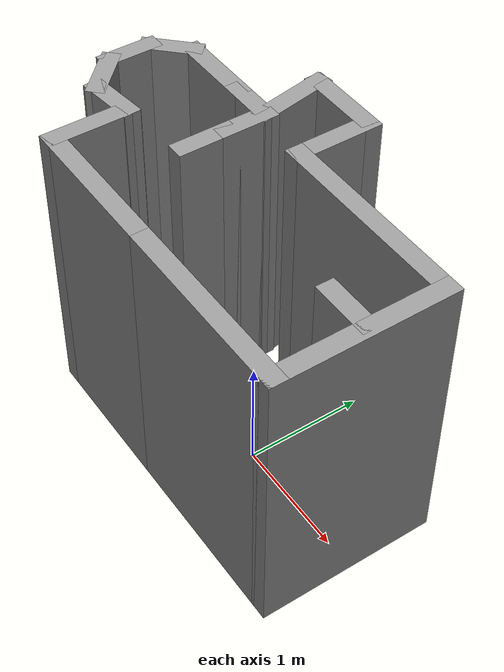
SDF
<?xml version='1.0'?>
<sdf version='1.7'>
  <model name='sample_world'>
    <pose>-0.477216 0.287847 0 0 -0 0</pose>
    <link name='Wall_148'>
      <collision name='Wall_148_Collision'>
        <geometry>
          <box>
            <size>0.4885 0.15 2.5</size>
          </box>
        </geometry>
        <pose>0 0 1.25 0 -0 0</pose>
      </collision>
      <visual name='Wall_148_Visual'>
        <pose>0 0 1.25 0 -0 0</pose>
        <geometry>
          <box>
            <size>0.4885 0.15 2.5</size>
          </box>
        </geometry>
        <material>
          <script>
            <uri>file://media/materials/scripts/gazebo.material</uri>
            <name>Gazebo/Grey</name>
          </script>
          <ambient>1 1 1 1</ambient>
        </material>
        <meta>
          <layer>0</layer>
        </meta>
      </visual>
      <pose>-0.435723 0.252866 0 0 -0 1.5708</pose>
    </link>
    <link name='Wall_149'>
      <collision name='Wall_149_Collision'>
        <geometry>
          <box>
            <size>0.5 0.15 2.5</size>
          </box>
        </geometry>
        <pose>0 0 1.25 0 -0 0</pose>
      </collision>
      <visual name='Wall_149_Visual'>
        <pose>0 0 1.25 0 -0 0</pose>
        <geometry>
          <box>
            <size>0.5 0.15 2.5</size>
          </box>
        </geometry>
        <material>
          <script>
            <uri>file://media/materials/scripts/gazebo.material</uri>
            <name>Gazebo/Grey</name>
          </script>
          <ambient>1 1 1 1</ambient>
        </material>
        <meta>
          <layer>0</layer>
        </meta>
      </visual>
      <pose>-0.610723 0.422116 0 0 -0 3.14159</pose>
    </link>
    <link name='Wall_151'>
      <collision name='Wall_151_Collision'>
        <geometry>
          <box>
            <size>0.5115 0.15 2.5</size>
          </box>
        </geometry>
        <pose>0 0 1.25 0 -0 0</pose>
      </collision>
      <visual name='Wall_151_Visual'>
        <pose>0 0 1.25 0 -0 0</pose>
        <geometry>
          <box>
            <size>0.5115 0.15 2.5</size>
          </box>
        </geometry>
        <material>
          <script>
            <uri>file://media/materials/scripts/gazebo.material</uri>
            <name>Gazebo/Grey</name>
          </script>
          <ambient>1 1 1 1</ambient>
        </material>
        <meta>
          <layer>0</layer>
        </meta>
      </visual>
      <pose>-0.435723 -0.097134 0 0 -0 -1.5708</pose>
    </link>
    <link name='Wall_154'>
      <collision name='Wall_154_Collision'>
        <geometry>
          <box>
            <size>1.25 0.15 2.5</size>
          </box>
        </geometry>
        <pose>0 0 1.25 0 -0 0</pose>
      </collision>
      <visual name='Wall_154_Visual'>
        <pose>0 0 1.25 0 -0 0</pose>
        <geometry>
          <box>
            <size>1.25 0.15 2.5</size>
          </box>
        </geometry>
        <material>
          <script>
            <uri>file://media/materials/scripts/gazebo.material</uri>
            <name>Gazebo/Grey</name>
          </script>
          <ambient>1 1 1 1</ambient>
        </material>
        <meta>
          <layer>0</layer>
        </meta>
      </visual>
      <pose>-0.485723 -0.981135 0 0 -0 3.14159</pose>
    </link>
    <link name='Wall_155'>
      <collision name='Wall_155_Collision'>
        <geometry>
          <box>
            <size>0.75 0.15 2.5</size>
          </box>
        </geometry>
        <pose>0 0 1.25 0 -0 0</pose>
      </collision>
      <visual name='Wall_155_Visual'>
        <pose>0 0 1.25 0 -0 0</pose>
        <geometry>
          <box>
            <size>0.75 0.15 2.5</size>
          </box>
        </geometry>
        <material>
          <script>
            <uri>file://media/materials/scripts/gazebo.material</uri>
            <name>Gazebo/Grey</name>
          </script>
          <ambient>1 1 1 1</ambient>
        </material>
        <meta>
          <layer>0</layer>
        </meta>
      </visual>
      <pose>-1.03572 -0.681135 0 0 -0 1.5708</pose>
    </link>
    <link name='Wall_158'>
      <collision name='Wall_158_Collision'>
        <geometry>
          <box>
            <size>0.75 0.15 2.5</size>
          </box>
        </geometry>
        <pose>0 0 1.25 0 -0 0</pose>
      </collision>
      <visual name='Wall_158_Visual'>
        <pose>0 0 1.25 0 -0 0</pose>
        <geometry>
          <box>
            <size>0.75 0.15 2.5</size>
          </box>
        </geometry>
        <material>
          <script>
            <uri>file://media/materials/scripts/gazebo.material</uri>
            <name>Gazebo/Grey</name>
          </script>
          <ambient>1 1 1 1</ambient>
        </material>
        <meta>
          <layer>0</layer>
        </meta>
      </visual>
      <pose>-1.08572 0.422116 0 0 -0 3.14159</pose>
    </link>
    <link name='Wall_159'>
      <collision name='Wall_159_Collision'>
        <geometry>
          <box>
            <size>0.5 0.15 2.5</size>
          </box>
        </geometry>
        <pose>0 0 1.25 0 -0 0</pose>
      </collision>
      <visual name='Wall_159_Visual'>
        <pose>0 0 1.25 0 -0 0</pose>
        <geometry>
          <box>
            <size>0.5 0.15 2.5</size>
          </box>
        </geometry>
        <material>
          <script>
            <uri>file://media/materials/scripts/gazebo.material</uri>
            <name>Gazebo/Grey</name>
          </script>
          <ambient>1 1 1 1</ambient>
        </material>
        <meta>
          <layer>0</layer>
        </meta>
      </visual>
      <pose>-1.50947 0.298372 0 0 -0 -2.35619</pose>
    </link>
    <link name='Wall_160'>
      <collision name='Wall_160_Collision'>
        <geometry>
          <box>
            <size>0.5 0.15 2.5</size>
          </box>
        </geometry>
        <pose>0 0 1.25 0 -0 0</pose>
      </collision>
      <visual name='Wall_160_Visual'>
        <pose>0 0 1.25 0 -0 0</pose>
        <geometry>
          <box>
            <size>0.5 0.15 2.5</size>
          </box>
        </geometry>
        <material>
          <script>
            <uri>file://media/materials/scripts/gazebo.material</uri>
            <name>Gazebo/Grey</name>
          </script>
          <ambient>1 1 1 1</ambient>
        </material>
        <meta>
          <layer>0</layer>
        </meta>
      </visual>
      <pose>-1.63321 -0.000372 0 0 -0 -1.5708</pose>
    </link>
    <link name='Wall_161'>
      <collision name='Wall_161_Collision'>
        <geometry>
          <box>
            <size>0.5 0.15 2.5</size>
          </box>
        </geometry>
        <pose>0 0 1.25 0 -0 0</pose>
      </collision>
      <visual name='Wall_161_Visual'>
        <pose>0 0 1.25 0 -0 0</pose>
        <geometry>
          <box>
            <size>0.5 0.15 2.5</size>
          </box>
        </geometry>
        <material>
          <script>
            <uri>file://media/materials/scripts/gazebo.material</uri>
            <name>Gazebo/Grey</name>
          </script>
          <ambient>1 1 1 1</ambient>
        </material>
        <meta>
          <layer>0</layer>
        </meta>
      </visual>
      <pose>-1.50947 -0.299115 0 0 -0 -0.785398</pose>
    </link>
    <link name='Wall_162'>
      <collision name='Wall_162_Collision'>
        <geometry>
          <box>
            <size>0.502478 0.15 2.5</size>
          </box>
        </geometry>
        <pose>0 0 1.25 0 -0 0</pose>
      </collision>
      <visual name='Wall_162_Visual'>
        <pose>0 0 1.25 0 -0 0</pose>
        <geometry>
          <box>
            <size>0.502478 0.15 2.5</size>
          </box>
        </geometry>
        <material>
          <script>
            <uri>file://media/materials/scripts/gazebo.material</uri>
            <name>Gazebo/Grey</name>
          </script>
          <ambient>1 1 1 1</ambient>
        </material>
        <meta>
          <layer>0</layer>
        </meta>
      </visual>
      <pose>-1.21072 -0.401997 0 0 -0 0.118652</pose>
    </link>
    <link name='Wall_164'>
      <collision name='Wall_164_Collision'>
        <geometry>
          <box>
            <size>1.75 0.15 2.5</size>
          </box>
        </geometry>
        <pose>0 0 1.25 0 -0 0</pose>
      </collision>
      <visual name='Wall_164_Visual'>
        <pose>0 0 1.25 0 -0 0</pose>
        <geometry>
          <box>
            <size>1.75 0.15 2.5</size>
          </box>
        </geometry>
        <material>
          <script>
            <uri>file://media/materials/scripts/gazebo.material</uri>
            <name>Gazebo/Grey</name>
          </script>
          <ambient>1 1 1 1</ambient>
        </material>
        <meta>
          <layer>0</layer>
        </meta>
      </visual>
      <pose>0.864277 -0.981135 0 0 -0 0</pose>
    </link>
    <link name='Wall_165'>
      <collision name='Wall_165_Collision'>
        <geometry>
          <box>
            <size>1.5 0.15 2.5</size>
          </box>
        </geometry>
        <pose>0 0 1.25 0 -0 0</pose>
      </collision>
      <visual name='Wall_165_Visual'>
        <pose>0 0 1.25 0 -0 0</pose>
        <geometry>
          <box>
            <size>1.5 0.15 2.5</size>
          </box>
        </geometry>
        <material>
          <script>
            <uri>file://media/materials/scripts/gazebo.material</uri>
            <name>Gazebo/Grey</name>
          </script>
          <ambient>1 1 1 1</ambient>
        </material>
        <meta>
          <layer>0</layer>
        </meta>
      </visual>
      <pose>1.66428 -0.306135 0 0 -0 1.5708</pose>
    </link>
    <link name='Wall_166'>
      <collision name='Wall_166_Collision'>
        <geometry>
          <box>
            <size>1.75 0.15 2.5</size>
          </box>
        </geometry>
        <pose>0 0 1.25 0 -0 0</pose>
      </collision>
      <visual name='Wall_166_Visual'>
        <pose>0 0 1.25 0 -0 0</pose>
        <geometry>
          <box>
            <size>1.75 0.15 2.5</size>
          </box>
        </geometry>
        <material>
          <script>
            <uri>file://media/materials/scripts/gazebo.material</uri>
            <name>Gazebo/Grey</name>
          </script>
          <ambient>1 1 1 1</ambient>
        </material>
        <meta>
          <layer>0</layer>
        </meta>
      </visual>
      <pose>0.864277 0.368865 0 0 -0 3.14159</pose>
    </link>
    <link name='Wall_167'>
      <collision name='Wall_167_Collision'>
        <geometry>
          <box>
            <size>0.75 0.15 2.5</size>
          </box>
        </geometry>
        <pose>0 0 1.25 0 -0 0</pose>
      </collision>
      <visual name='Wall_167_Visual'>
        <pose>0 0 1.25 0 -0 0</pose>
        <geometry>
          <box>
            <size>0.75 0.15 2.5</size>
          </box>
        </geometry>
        <material>
          <script>
            <uri>file://media/materials/scripts/gazebo.material</uri>
            <name>Gazebo/Grey</name>
          </script>
          <ambient>1 1 1 1</ambient>
        </material>
        <meta>
          <layer>0</layer>
        </meta>
      </visual>
      <pose>0.064277 0.668865 0 0 -0 1.5708</pose>
    </link>
    <link name='Wall_168'>
      <collision name='Wall_168_Collision'>
        <geometry>
          <box>
            <size>0.75 0.15 2.5</size>
          </box>
        </geometry>
        <pose>0 0 1.25 0 -0 0</pose>
      </collision>
      <visual name='Wall_168_Visual'>
        <pose>0 0 1.25 0 -0 0</pose>
        <geometry>
          <box>
            <size>0.75 0.15 2.5</size>
          </box>
        </geometry>
        <material>
          <script>
            <uri>file://media/materials/scripts/gazebo.material</uri>
            <name>Gazebo/Grey</name>
          </script>
          <ambient>1 1 1 1</ambient>
        </material>
        <meta>
          <layer>0</layer>
        </meta>
      </visual>
      <pose>-0.235723 0.968865 0 0 -0 3.14159</pose>
    </link>
    <link name='Wall_169'>
      <collision name='Wall_169_Collision'>
        <geometry>
          <box>
            <size>0.705819 0.15 2.5</size>
          </box>
        </geometry>
        <pose>0 0 1.25 0 -0 0</pose>
      </collision>
      <visual name='Wall_169_Visual'>
        <pose>0 0 1.25 0 -0 0</pose>
        <geometry>
          <box>
            <size>0.705819 0.15 2.5</size>
          </box>
        </geometry>
        <material>
          <script>
            <uri>file://media/materials/scripts/gazebo.material</uri>
            <name>Gazebo/Grey</name>
          </script>
          <ambient>1 1 1 1</ambient>
        </material>
        <meta>
          <layer>0</layer>
        </meta>
      </visual>
      <pose>-0.485723 0.69549 0 0 -0 -1.3899</pose>
    </link>
    <link name='Wall_171'>
      <collision name='Wall_171_Collision'>
        <geometry>
          <box>
            <size>0.5 0.15 2.5</size>
          </box>
        </geometry>
        <pose>0 0 1.25 0 -0 0</pose>
      </collision>
      <visual name='Wall_171_Visual'>
        <pose>0 0 1.25 0 -0 0</pose>
        <geometry>
          <box>
            <size>0.5 0.15 2.5</size>
          </box>
        </geometry>
        <material>
          <script>
            <uri>file://media/materials/scripts/gazebo.material</uri>
            <name>Gazebo/Grey</name>
          </script>
          <ambient>1 1 1 1</ambient>
        </material>
        <meta>
          <layer>0</layer>
        </meta>
      </visual>
      <pose>1.44705 -0.251428 0 0 -0 3.14159</pose>
    </link>
    <static>1</static>
  </model>
</sdf>
